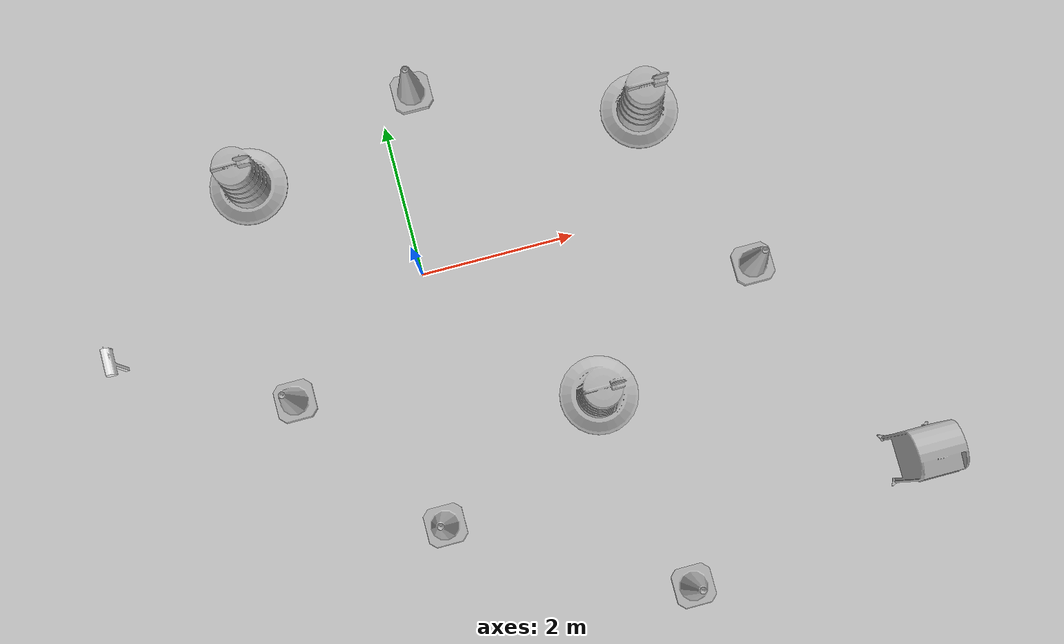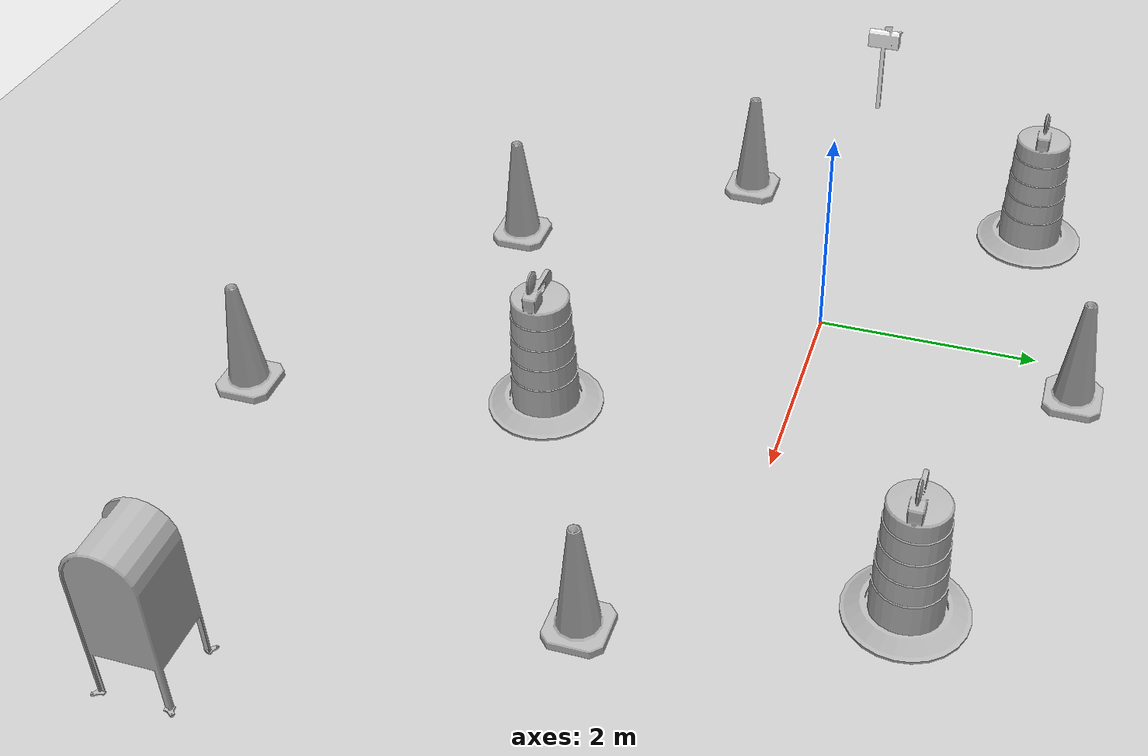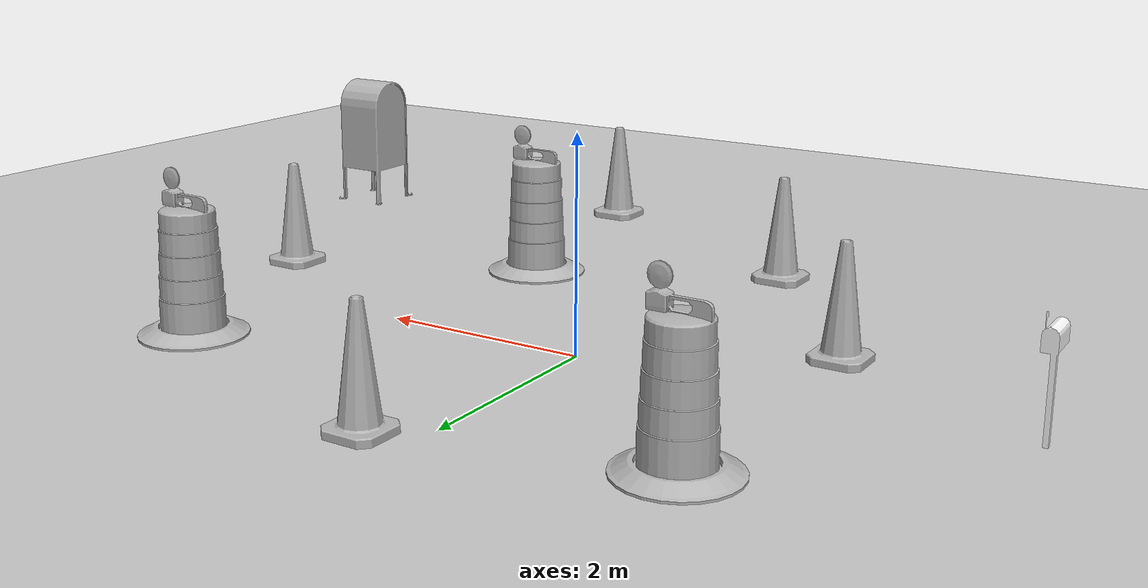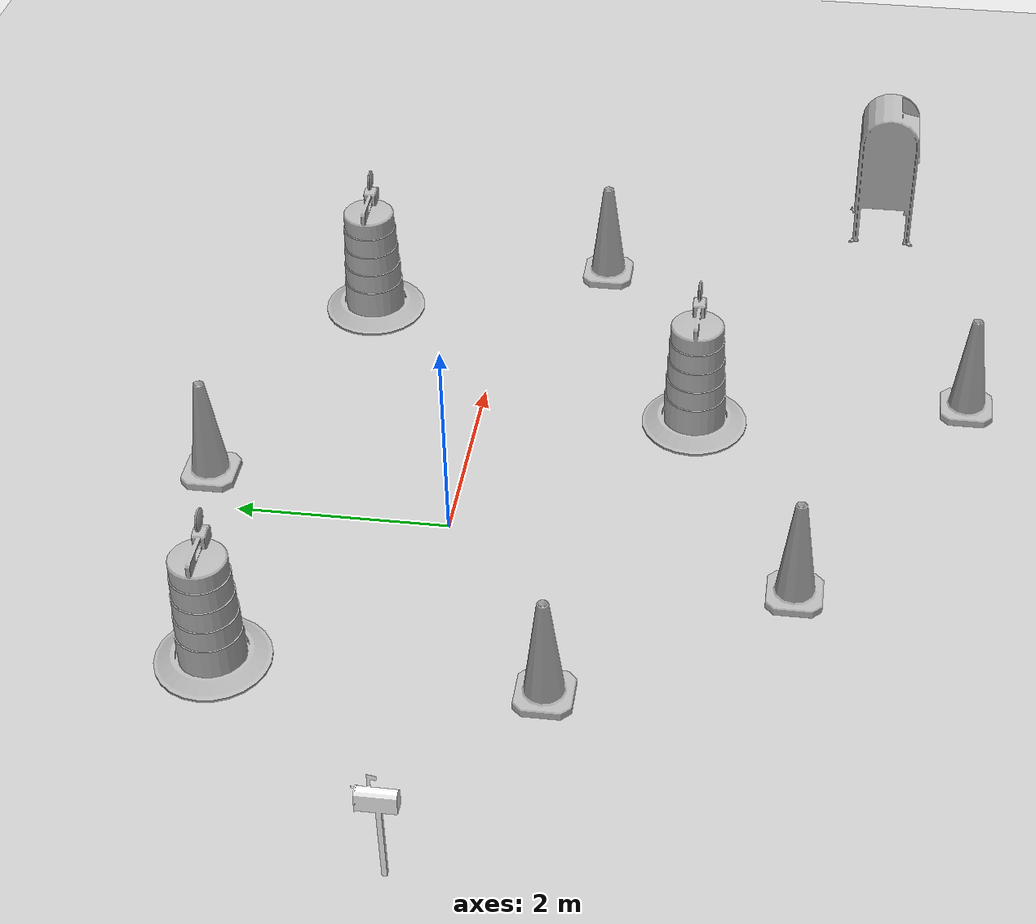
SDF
<sdf version="1.7">
 <world name="default">
  <light name="sun" type="directional">
   <pose>0 0 10 0 -0 0</pose>
   <diffuse>0.8 0.8 0.8 1</diffuse>
   <specular>0.2 0.2 0.2 1</specular>
   <attenuation>
    <range>1000</range>
    <constant>0.9</constant>
    <linear>0.01</linear>
    <quadratic>0.001</quadratic>
   </attenuation>
   <direction>-0.5 0.1 -0.9</direction>
   <spot><inner_angle>0</inner_angle><outer_angle>0</outer_angle><falloff>0</falloff></spot>
  </light>
  <model name="ground_plane">
   <static>1</static>
   <link name="link">
    <collision name="collision">
     <geometry><plane><normal>0 0 1</normal><size>100 100</size></plane></geometry>
     <surface>
      <contact><collide_bitmask>65535</collide_bitmask></contact>
      <friction><ode><mu>100</mu><mu2>50</mu2></ode></friction>
     </surface>
    </collision>
    <visual name="visual">
     <cast_shadows>0</cast_shadows>
     <geometry><plane><normal>0 0 1</normal><size>100 100</size></plane></geometry>
     <material>
      <script><uri>file://media/materials/scripts/gazebo.material</uri><name>Gazebo/Grey</name></script>
     </material>
    </visual>
   </link>
  </model>
  <gravity>0 0 -9.8</gravity>
  <magnetic_field>6e-06 2.3e-05 -4.2e-05</magnetic_field>
  <atmosphere type="adiabatic"/>
  <physics type="ode">
   <max_step_size>0.001</max_step_size>
   <real_time_factor>1</real_time_factor>
   <real_time_update_rate>1000</real_time_update_rate>
  </physics>
  <scene><ambient>0.4 0.4 0.4 1</ambient><background>0.7 0.7 0.7 1</background><shadows>1</shadows></scene>
  <audio><device>default</device></audio>
  <spherical_coordinates>
   <surface_model>EARTH_WGS84</surface_model>
   <latitude_deg>0</latitude_deg>
   <longitude_deg>0</longitude_deg>
   <elevation>0</elevation>
   <heading_deg>0</heading_deg>
  </spherical_coordinates>
  <model name="Mailbox">
   <link name="link">
    <collision name="collision">
     <geometry><mesh><uri>model://mailbox/meshes/mailbox.dae</uri></mesh></geometry>
    </collision>
    <visual name="visual">
     <geometry><mesh><uri>model://mailbox/meshes/mailbox.dae</uri></mesh></geometry>
     <material>
      <script>
       <uri>model://mailbox/materials/scripts</uri>
       <uri>model://mailbox/materials/textures</uri>
       <name>Mailbox/Diffuse</name>
      </script>
     </material>
    </visual>
    <inertial>
     <inertia><ixx>1</ixx><ixy>0</ixy><ixz>0</ixz><iyy>1</iyy><iyz>0</iyz><izz>1</izz></inertia>
     <mass>1</mass>
    </inertial>
   </link>
   <pose>-3.9776 -0.216204 -9e-06 -7e-06 -1e-06 0</pose>
  </model>
  <model name="Construction Cone">
   <link name="link">
    <collision name="collision">
     <geometry>
      <mesh><scale>10 10 10</scale><uri>model://construction_cone/meshes/construction_cone.dae</uri></mesh>
     </geometry>
    </collision>
    <visual name="visual">
     <geometry>
      <mesh><scale>10 10 10</scale><uri>model://construction_cone/meshes/construction_cone.dae</uri></mesh>
     </geometry>
    </visual>
    <inertial>
     <inertia><ixx>1</ixx><ixy>0</ixy><ixz>0</ixz><iyy>1</iyy><iyz>0</iyz><izz>1</izz></inertia>
     <mass>1</mass>
    </inertial>
   </link>
   <pose>-0.525045 -3.1923 -8e-06 1e-06 -0 0</pose>
  </model>
  <model name="Construction Barrel">
   <link name="link">
    <inertial>
     <pose>0 0 0.4 0 -0 0</pose>
     <mass>500</mass>
     <inertia><ixx>51.2096</ixx><iyy>51.2096</iyy><izz>25</izz><ixy>0</ixy><ixz>0</ixz><iyz>0</iyz></inertia>
    </inertial>
    <collision name="collision">
     <geometry><mesh><uri>model://construction_barrel/meshes/construction_barrel.dae</uri></mesh></geometry>
    </collision>
    <visual name="visual">
     <geometry><mesh><uri>model://construction_barrel/meshes/construction_barrel.dae</uri></mesh></geometry>
    </visual>
   </link>
   <pose>-1.90662 1.70707 -0 0 0 -1.9e-05</pose>
  </model>
  <model name="Construction Cone_0">
   <link name="link">
    <collision name="collision">
     <geometry>
      <mesh><scale>10 10 10</scale><uri>model://construction_cone/meshes/construction_cone.dae</uri></mesh>
     </geometry>
    </collision>
    <visual name="visual">
     <geometry>
      <mesh><scale>10 10 10</scale><uri>model://construction_cone/meshes/construction_cone.dae</uri></mesh>
     </geometry>
    </visual>
    <inertial>
     <inertia><ixx>1</ixx><ixy>0</ixy><ixz>0</ixz><iyy>1</iyy><iyz>0</iyz><izz>1</izz></inertia>
     <mass>1</mass>
    </inertial>
   </link>
   <pose>0.456971 2.36995 -0 0 -1e-06 0</pose>
  </model>
  <model name="Construction Barrel_clone">
   <link name="link">
    <inertial>
     <pose>0 0 0.4 0 -0 0</pose>
     <mass>500</mass>
     <inertia><ixx>51.2096</ixx><iyy>51.2096</iyy><izz>25</izz><ixy>0</ixy><ixz>0</ixz><iyz>0</iyz></inertia>
    </inertial>
    <collision name="collision">
     <geometry><mesh><uri>model://construction_barrel/meshes/construction_barrel.dae</uri></mesh></geometry>
    </collision>
    <visual name="visual">
     <geometry><mesh><uri>model://construction_barrel/meshes/construction_barrel.dae</uri></mesh></geometry>
    </visual>
   </link>
   <pose>1.79089 -2.09698 -2e-06 4e-06 7e-06 -1.5e-05</pose>
  </model>
  <model name="Construction Barrel_clone_clone">
   <link name="link">
    <inertial>
     <pose>0 0 0.4 0 -0 0</pose>
     <mass>500</mass>
     <inertia><ixx>51.2096</ixx><iyy>51.2096</iyy><izz>25</izz><ixy>0</ixy><ixz>0</ixz><iyz>0</iyz></inertia>
    </inertial>
    <collision name="collision">
     <geometry><mesh><uri>model://construction_barrel/meshes/construction_barrel.dae</uri></mesh></geometry>
    </collision>
    <visual name="visual">
     <geometry><mesh><uri>model://construction_barrel/meshes/construction_barrel.dae</uri></mesh></geometry>
    </visual>
   </link>
   <pose>3.28266 1.3774 0 0 0 -1.4e-05</pose>
  </model>
  <model name="Construction Cone_0_clone">
   <link name="link">
    <collision name="collision">
     <geometry>
      <mesh><scale>10 10 10</scale><uri>model://construction_cone/meshes/construction_cone.dae</uri></mesh>
     </geometry>
    </collision>
    <visual name="visual">
     <geometry>
      <mesh><scale>10 10 10</scale><uri>model://construction_cone/meshes/construction_cone.dae</uri></mesh>
     </geometry>
    </visual>
    <inertial>
     <inertia><ixx>1</ixx><ixy>0</ixy><ixz>0</ixz><iyy>1</iyy><iyz>0</iyz><izz>1</izz></inertia>
     <mass>1</mass>
    </inertial>
   </link>
   <pose>-1.98623 -1.17172 -1e-06 2e-06 2e-06 0</pose>
  </model>
  <model name="Construction Cone_0_clone_0">
   <link name="link">
    <collision name="collision">
     <geometry>
      <mesh><scale>10 10 10</scale><uri>model://construction_cone/meshes/construction_cone.dae</uri></mesh>
     </geometry>
    </collision>
    <visual name="visual">
     <geometry>
      <mesh><scale>10 10 10</scale><uri>model://construction_cone/meshes/construction_cone.dae</uri></mesh>
     </geometry>
    </visual>
    <inertial>
     <inertia><ixx>1</ixx><ixy>0</ixy><ixz>0</ixz><iyy>1</iyy><iyz>0</iyz><izz>1</izz></inertia>
     <mass>1</mass>
    </inertial>
   </link>
   <pose>4.15923 -0.968905 -0 0 -1e-06 0</pose>
  </model>
  <model name="Construction Cone_0_clone_1">
   <link name="link">
    <collision name="collision">
     <geometry>
      <mesh><scale>10 10 10</scale><uri>model://construction_cone/meshes/construction_cone.dae</uri></mesh>
     </geometry>
    </collision>
    <visual name="visual">
     <geometry>
      <mesh><scale>10 10 10</scale><uri>model://construction_cone/meshes/construction_cone.dae</uri></mesh>
     </geometry>
    </visual>
    <inertial>
     <inertia><ixx>1</ixx><ixy>0</ixy><ixz>0</ixz><iyy>1</iyy><iyz>0</iyz><izz>1</izz></inertia>
     <mass>1</mass>
    </inertial>
   </link>
   <pose>2.30803 -4.72931 -0 0 -0 0</pose>
  </model>
  <model name="postbox">
   <static>1</static>
   <link name="link">
    <collision name="collision">
     <geometry><mesh><uri>model://postbox/meshes/postbox.dae</uri></mesh></geometry>
    </collision>
    <visual name="visual"><geometry><mesh><uri>model://postbox/meshes/postbox.dae</uri></mesh></geometry></visual>
   </link>
   <pose>5.4289 -3.84317 0 0 -0 0</pose>
  </model>
 </world>
</sdf>
